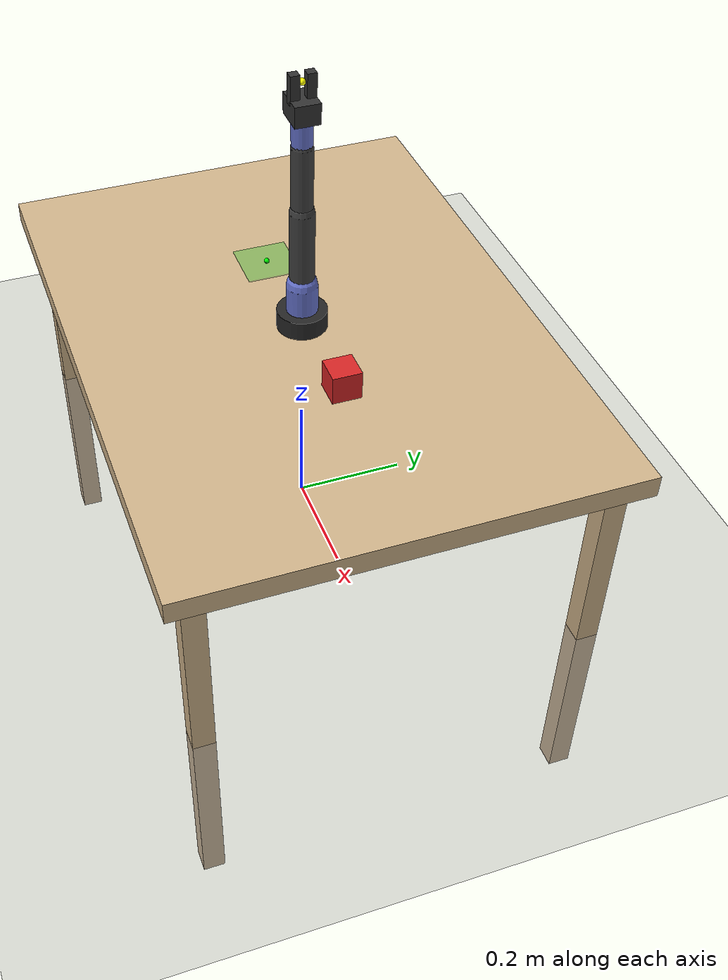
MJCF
<mujoco model="so101_pick_place">

  <compiler angle="radian" autolimits="true"/>

  <option timestep="0.002" gravity="0 0 -9.81" integrator="RK4">
    <flag contact="enable" frictionloss="enable"/>
  </option>

  <visual>
    <headlight diffuse="0.6 0.6 0.6" ambient="0.3 0.3 0.3" specular="0.1 0.1 0.1"/>
    <rgba haze="0.15 0.25 0.35 1"/>
    <global azimuth="120" elevation="-20"/>
  </visual>

  <asset>
    <material name="table_mat"   rgba="0.82 0.71 0.55 1"/>
    <material name="base_mat"    rgba="0.15 0.15 0.15 1" shininess="0.6"/>
    <material name="link_mat"    rgba="0.25 0.25 0.25 1" shininess="0.4"/>
    <material name="joint_mat"   rgba="0.40 0.45 0.80 1" shininess="0.5"/>
    <material name="gripper_mat" rgba="0.20 0.20 0.20 1"/>
    <material name="object_mat"  rgba="0.85 0.15 0.15 1" shininess="0.5"/>
    <material name="target_mat"  rgba="0.10 0.75 0.10 0.35"/>
    <material name="floor_mat"   rgba="0.55 0.55 0.55 1"/>
  </asset>

  <default>
    <joint damping="0.8" armature="0.02" frictionloss="0.02"/>
    <geom contype="1" conaffinity="1" condim="4" friction="1.2 0.005 0.0001"/>
    <position kp="120" kv="12"/>
  </default>

  <worldbody>

    <!-- Floor -->
    <geom name="floor" type="plane" size="2 2 0.1"
          material="floor_mat" contype="1" conaffinity="1"/>

    <!-- Table -->
    <body name="table" pos="0 0 0.38">
      <geom type="box" size="0.55 0.40 0.02" pos="0 0 0"      material="table_mat"/>
      <geom type="box" size="0.02 0.02 0.38" pos=" 0.50  0.35 -0.38" material="table_mat"/>
      <geom type="box" size="0.02 0.02 0.38" pos="-0.50  0.35 -0.38" material="table_mat"/>
      <geom type="box" size="0.02 0.02 0.38" pos=" 0.50 -0.35 -0.38" material="table_mat"/>
      <geom type="box" size="0.02 0.02 0.38" pos="-0.50 -0.35 -0.38" material="table_mat"/>
    </body>

    <body name="base_link" pos="0 0 0.40">
      <!-- Base cylinder -->
      <geom name="base_geom" type="cylinder" size="0.045 0.035"
            material="base_mat" contype="1" conaffinity="0"/>
      <inertial pos="0 0 0" mass="0.6" diaginertia="0.002 0.002 0.002"/>

      <!-- Joint 1: shoulder_pan — Z axis -->
      <joint name="shoulder_pan" type="hinge" axis="0 0 1"
             range="-1.91986 1.91986" pos="0 0 0"/>

      <body name="shoulder_link" pos="0 0 0.055">
        <geom name="shoulder_geom" type="capsule" size="0.028"
              fromto="0 0 -0.03 0 0 0.03" material="joint_mat" contype="1" conaffinity="0"/>
        <inertial pos="0 0 0" mass="0.35" diaginertia="0.001 0.001 0.001"/>

        <!-- Joint 2: shoulder_lift — Y axis -->
        <joint name="shoulder_lift" type="hinge" axis="0 1 0"
               range="-1.74533 1.74533" pos="0 0 0"/>

        <body name="upper_arm_link" pos="0 0 0.035">
          <!-- Upper arm: ~14 cm long -->
          <geom name="upper_arm_geom" type="capsule" size="0.022"
                fromto="0 0 0 0 0 0.14" material="link_mat" contype="1" conaffinity="0"/>
          <inertial pos="0 0 0.07" mass="0.28" diaginertia="0.0006 0.0006 0.00005"/>

          <!-- Joint 3: elbow_flex — Y axis -->
          <joint name="elbow_flex" type="hinge" axis="0 1 0"
                 range="-1.69 1.69" pos="0 0 0.14"/>

          <body name="lower_arm_link" pos="0 0 0.14">
            <!-- Lower arm: ~12 cm long -->
            <geom name="lower_arm_geom" type="capsule" size="0.019"
                  fromto="0 0 0 0 0 0.12" material="link_mat" contype="1" conaffinity="0"/>
            <inertial pos="0 0 0.06" mass="0.22" diaginertia="0.0004 0.0004 0.00004"/>

            <!-- Joint 4: wrist_flex — Y axis -->
            <joint name="wrist_flex" type="hinge" axis="0 1 0"
                   range="-1.65806 1.65806" pos="0 0 0.12"/>

            <body name="wrist_link" pos="0 0 0.12">
              <geom name="wrist_geom" type="capsule" size="0.018"
                    fromto="0 0 0 0 0 0.05" material="joint_mat" contype="1" conaffinity="0"/>
              <inertial pos="0 0 0.025" mass="0.12" diaginertia="0.0002 0.0002 0.00003"/>

              <!-- Joint 5: wrist_roll — X axis -->
              <joint name="wrist_roll" type="hinge" axis="1 0 0"
                     range="-2.74385 2.84121" pos="0 0 0"/>

              <body name="gripper_link" pos="0 0 0.05">
                <!-- Gripper palm -->
                <geom name="gripper_palm" type="box" size="0.028 0.022 0.018"
                      pos="0 0 0.018" material="gripper_mat" contype="1" conaffinity="0"/>
                <!-- Fixed lower jaw -->
                <geom name="fixed_jaw" type="box" size="0.008 0.008 0.025"
                      pos="0 -0.014 0.052" material="gripper_mat"
                      contype="1" conaffinity="1" friction="2.0 0.01 0.002"/>
                <inertial pos="0 0 0.02" mass="0.09" diaginertia="0.0001 0.0001 0.00008"/>

                <!-- EE tracking site — between the two jaws -->
                <site name="ee_site" pos="0 0 0.062" size="0.006" rgba="1 1 0 1"/>

                <!-- Joint 6: gripper — single revolute (matches real SO101 URDF)
                     open  ≈ 1.5 rad (jaw swings away)
                     closed ≈ 0.0 rad (jaw closed on object) -->
                <joint name="gripper" type="hinge" axis="0 1 0"
                       range="-0.17453 1.74533" pos="0 0.014 0.036"/>

                <!-- Moving jaw -->
                <body name="moving_jaw_link" pos="0 0.014 0.036">
                  <geom name="moving_jaw" type="box" size="0.008 0.008 0.025"
                        pos="0 0 0.016" material="gripper_mat"
                        contype="1" conaffinity="1" friction="2.0 0.01 0.002"/>
                  <inertial pos="0 0 0.016" mass="0.025"
                            diaginertia="0.00002 0.00002 0.000005"/>
                </body>

              </body> <!-- gripper_link -->
            </body> <!-- wrist_link -->
          </body> <!-- lower_arm_link -->
        </body> <!-- upper_arm_link -->
      </body> <!-- shoulder_link -->
    </body> <!-- base_link -->

    <body name="object" pos="0.20 0.0 0.432">
      <freejoint name="object_freejoint"/>
      <geom name="object_geom" type="box" size="0.026 0.026 0.026"
            material="object_mat" mass="0.06"
            friction="1.8 0.01 0.001" contype="1" conaffinity="1"
            condim="4"/>
      <inertial pos="0 0 0" mass="0.06" diaginertia="0.00003 0.00003 0.00003"/>
      <site name="object_site" pos="0 0 0" size="0.005" rgba="1 0 0 1"/>
    </body>

    <!-- ============================================================
         Target drop zone (visual only — no collision)
         ============================================================ -->
    <body name="target_zone" pos="-0.20 0.0 0.402">
      <geom name="target_geom" type="box" size="0.05 0.05 0.001"
            material="target_mat" contype="0" conaffinity="0"/>
      <site name="target_site" pos="0 0 0.002" size="0.005" rgba="0 1 0 1"/>
    </body>

  </worldbody>

  <actuator>
    <position name="act_shoulder_pan"  joint="shoulder_pan"
              kp="160" kv="16" ctrlrange="-1.91986 1.91986"
              forcelimited="true" forcerange="-25 25"/>
    <position name="act_shoulder_lift" joint="shoulder_lift"
              kp="160" kv="16" ctrlrange="-1.74533 1.74533"
              forcelimited="true" forcerange="-25 25"/>
    <position name="act_elbow_flex"    joint="elbow_flex"
              kp="120" kv="12" ctrlrange="-1.69 1.69"
              forcelimited="true" forcerange="-20 20"/>
    <position name="act_wrist_flex"    joint="wrist_flex"
              kp="90"  kv="9"  ctrlrange="-1.65806 1.65806"
              forcelimited="true" forcerange="-12 12"/>
    <position name="act_wrist_roll"    joint="wrist_roll"
              kp="70"  kv="7"  ctrlrange="-2.74385 2.84121"
              forcelimited="true" forcerange="-10 10"/>
    <position name="act_gripper"       joint="gripper"
              kp="200" kv="20" ctrlrange="-0.17453 1.74533"
              forcelimited="true" forcerange="-8 8"/>
  </actuator>

  <!-- ============================================================
       Sensors
       ============================================================ -->
  <sensor>
    <jointpos  name="q_shoulder_pan"  joint="shoulder_pan"/>
    <jointpos  name="q_shoulder_lift" joint="shoulder_lift"/>
    <jointpos  name="q_elbow_flex"    joint="elbow_flex"/>
    <jointpos  name="q_wrist_flex"    joint="wrist_flex"/>
    <jointpos  name="q_wrist_roll"    joint="wrist_roll"/>
    <jointpos  name="q_gripper"       joint="gripper"/>
    <framepos  name="ee_pos"          objtype="site" objname="ee_site"/>
    <framequat name="ee_quat"         objtype="site" objname="ee_site"/>
    <framepos  name="object_pos"      objtype="site" objname="object_site"/>
    <framepos  name="target_pos"      objtype="site" objname="target_site"/>
  </sensor>

</mujoco>
